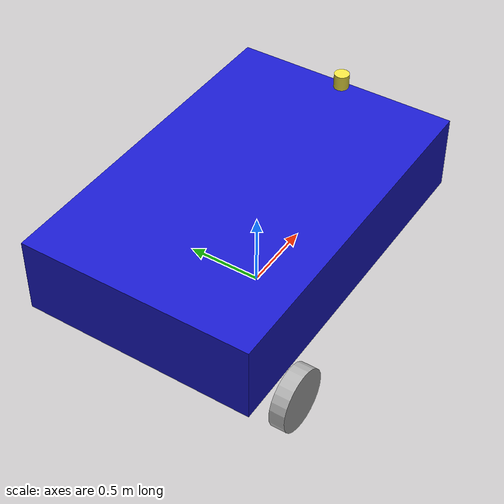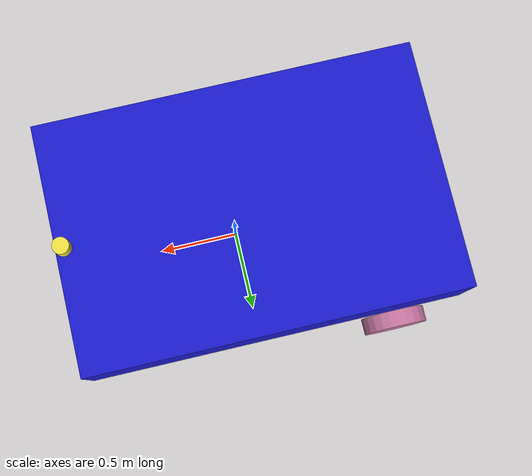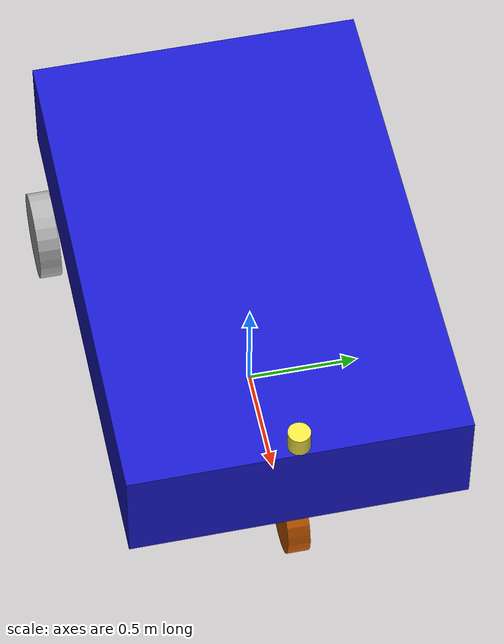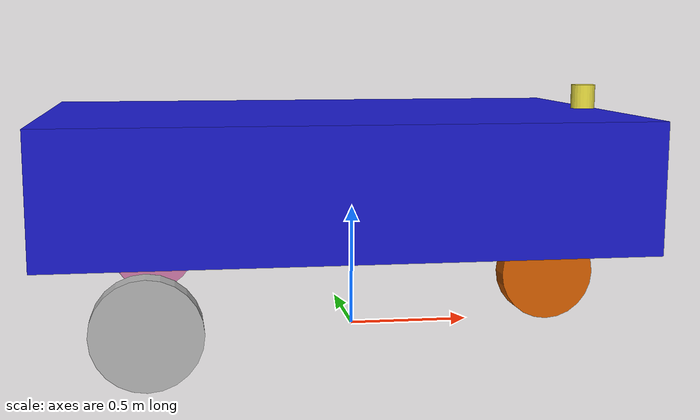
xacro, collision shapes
<?xml version="1.0"?>
<robot name="forklift" xmlns:xacro="http://www.ros.org/wiki/xacro">
  <!-- 定义常量参数 -->
  <xacro:property name="clearance" value="0.008"/> <!-- 增加安全间隙 -->
  <xacro:property name="wheel_radius" value="0.2" />
  <xacro:property name="wheelbase" value="1.7" />
  <xacro:property name="chassis_length" value="2.3" />
  <xacro:property name="chassis_width" value="1.5" />
  <xacro:property name="chassis_height" value="0.5" />
  <xacro:property name="track_width" value="1.6" />

  <!-- 质量参数 -->
  <xacro:property name="chassis_mass" value="100" />
  <xacro:property name="front_wheel_mass" value="30" />
  <xacro:property name="back_wheel_mass" value="5" />

  <!-- 坐标位置计算 -->
  <xacro:property name="wheel_z" value="-${chassis_height/2 + wheel_radius + clearance}" />
  <xacro:property name="front_wheel_x" value="${wheelbase/2}" />
  <xacro:property name="rear_wheel_x" value="${-wheelbase/2}" />
  <xacro:property name="rear_wheel_y" value="${track_width/2}" />
  <xacro:property name="lidar_z" value="${chassis_height / 2 + 0.05}" />
  <!-- 定义一些常用的材料和颜色 -->

  <!-- 指定前轮和后轮为黑色 -->
  <material name="red">
    <color rgba="0.8 0.1 0.1 1"/>
  </material>
  <material name="black">
    <color rgba="0.1 0.1 0.1 1"/>
  </material>
  <material name="blue">
    <color rgba="0.1 0.1 0.8 1"/>
  </material>

  <!-- 地面投影基准坐标系 -->
  <link name="base_footprint" />

  <!-- 底盘 -->
  <link name="base_link">

    <visual>
      <origin xyz="0 0 0.0" rpy="0 0 0"/>
      <geometry>
        <box size="${chassis_length} ${chassis_width} ${chassis_height}"/>
      </geometry>
      <material name="blue"/>
    </visual>

    <collision>
      <origin xyz="-0.1 0 0.0" rpy="0 0 0"/>
      <geometry>
        <box size="${chassis_length} ${chassis_width} ${chassis_height}"/>
      </geometry>
    </collision>

    <inertial>
      <mass value="${chassis_mass}"/>
      <origin xyz="-0.15 0 0.0" rpy="0 0 0"/>
      <inertia ixx="${chassis_mass*(chassis_width**2 + chassis_height**2)/12}"
               ixy="0" ixz="0"
               iyy="${chassis_mass*(chassis_length**2 + chassis_height**2)/12}"
               iyz="0"
               izz="${chassis_mass*(chassis_length**2 + chassis_width**2)/12}"/>
    </inertial>
  </link>

  <link name="imu_link">
    <visual>
      <origin xyz="0 0 0" rpy="0 0 0"/>
      <geometry>
        <box size="0.05 0.05 0.02"/>
      </geometry>
      <material name="red"/>
    </visual>

    <collision>
      <origin xyz="0 0 0" rpy="0 0 0"/>
      <geometry>
        <box size="0.05 0.05 0.02"/>
      </geometry>
    </collision>

    <inertial>
      <mass value="0.1"/>
      <origin xyz="0 0 0" rpy="0 0 0"/>
      <inertia ixx="0.0001" ixy="0" ixz="0"
               iyy="0.0001" iyz="0"
               izz="0.0001"/>
    </inertial>
  </link>
  <joint name="imu_joint" type="fixed">
    <parent link="base_link"/>
    <child link="imu_link"/>
    <origin xyz="0 0 ${chassis_height/2 - 0.05}" rpy="0 0 0"/>
  </joint>

  <!-- base_footprint 到 base_link 的连接 -->
  <joint name="base_footprint_joint" type="fixed">
    <parent link="base_footprint"/>
    <child link="base_link"/>
    <origin xyz="0 0 ${wheel_radius * 2 + chassis_height/2 + clearance}" rpy="0 0 0"/>
  </joint>

  <!-- 激光雷达 -->
  <link name="scanner_link">
    <visual>
            <origin xyz="0 0 0" rpy="0 0 0" />
      <geometry>
                <mesh filename="package://orient_description/kf2404/meshes/R2000.stl" scale="0.001 0.001 0.001" />
        </geometry>
    </visual>

    <collision>
      <geometry>
        <cylinder length="0.1" radius="0.05"/>
      </geometry>
    </collision>
    <inertial>
      <mass value="0.2"/>
      <inertia ixx="0.001" ixy="0" ixz="0" iyy="0.001" iyz="0" izz="0.001"/>
    </inertial>
  </link>

  <joint name="scanner_joint" type="fixed">
    <parent link="base_link"/>
    <child link="scanner_link"/>
    <origin xyz="1.0 0 ${lidar_z}" rpy="0 0 0"/>
  </joint>

  <!-- 前轮转向连接件 -->
  <!-- 前轮转向连接件 -->
  <link name="front_wheel_steering">
    <inertial>
      <origin xyz="0 0 0" rpy="0 0 0"/>
      <mass value="5.0"/>
      <inertia ixx="0.01" ixy="0" ixz="0" iyy="0.01" iyz="0" izz="0.01"/>
    </inertial>
  </link>
  <!-- 前轮转向关节 -->
  <joint name="front_wheel_steer_joint" type="continuous">
    <parent link="base_link"/>
    <child link="front_wheel_steering"/>
    <origin xyz="${front_wheel_x} 0 ${wheel_z}" rpy="0 0 0"/>
    <axis xyz="0 0 1"/>
  </joint>

  <link name="front_wheel">
    <visual>
      <origin rpy="0 0 0"/>
      <geometry>
          <mesh filename="package://turtlebot3_gazebo/models/turtlebot3_common/meshes/wheels/left_tire.stl" scale="0.0065 0.0065 0.0065"/>
        </geometry>
    </visual>

    <collision>
      <origin rpy="${pi/2} 0 0"/>
      <geometry>
        <cylinder radius="${wheel_radius}" length="0.1"/>
      </geometry>
    </collision>

    <inertial>
      <origin rpy="${pi/2} 0 0"/>
      <mass value="${front_wheel_mass}"/>
      <inertia ixx="${front_wheel_mass*(3*wheel_radius**2 + 0.01)/12}"
              ixy="0" ixz="0"
              iyy="${front_wheel_mass*wheel_radius**2/2}"
              iyz="0"
              izz="${front_wheel_mass*(3*wheel_radius**2 + 0.01)/12}"/>

    </inertial>
  </link>

  <joint name="front_wheel_joint" type="continuous">
    <parent link="front_wheel_steering"/>
    <child link="front_wheel"/>
    <origin xyz="0 0 0" rpy="0 0 0"/>
    <axis xyz="0 1 0"/>
  </joint>

  <!-- 左后轮 -->
  <link name="left_rear_wheel">
    <visual>
      <origin rpy="0 0 0"/>
      <geometry>
          <mesh filename="package://turtlebot3_gazebo/models/turtlebot3_common/meshes/wheels/left_tire.stl" scale="0.0065 0.0065 0.0065"/>
        </geometry>
    </visual>

    <collision>
      <origin rpy="${pi/2} 0 0"/>
      <geometry>
        <cylinder radius="${wheel_radius}" length="0.1"/>
      </geometry>
    </collision>

    <inertial>
      <origin rpy="${pi/2} 0 0"/>
      <mass value="${back_wheel_mass}"/>
      <inertia ixx="${back_wheel_mass*(3*wheel_radius**2 + 0.01)/12}"
         ixy="0" ixz="0"
         iyy="${back_wheel_mass*wheel_radius**2/2}"
         iyz="0"
         izz="${back_wheel_mass*(3*wheel_radius**2 + 0.01)/12}"/>
    </inertial>
  </link>

  <joint name="left_rear_wheel_joint" type="continuous">
    <parent link="base_link"/>
    <child link="left_rear_wheel"/>
    <origin xyz="${rear_wheel_x} ${rear_wheel_y} ${wheel_z}" rpy="0 0 0"/>
    <axis xyz="0 1 0"/>
  </joint>

  <!-- 右后轮 -->
  <link name="right_rear_wheel">
    <visual>
      <origin rpy="0 0 0"/>
      <geometry>
          <mesh filename="package://turtlebot3_gazebo/models/turtlebot3_common/meshes/wheels/right_tire.stl" scale="0.0065 0.0065 0.0065"/>
      </geometry>
    </visual>

    <collision>
      <origin rpy="${pi/2} 0 0"/>
      <geometry>
        <cylinder radius="${wheel_radius}" length="0.1"/>
      </geometry>
    </collision>

    <inertial>
      <origin rpy="${pi/2} 0 0"/>
      <mass value="${back_wheel_mass}"/>
      <inertia ixx="${back_wheel_mass*(3*wheel_radius**2 + 0.01)/12}"
              ixy="0" ixz="0"
              iyy="${back_wheel_mass*wheel_radius**2/2}"
              iyz="0"
              izz="${back_wheel_mass*(3*wheel_radius**2 + 0.01)/12}"/>
    </inertial>
  </link>

  <joint name="right_rear_wheel_joint" type="continuous">
    <parent link="base_link"/>
    <child link="right_rear_wheel"/>
    <origin xyz="${rear_wheel_x} ${-rear_wheel_y} ${wheel_z}" rpy="0 0 0"/>
    <axis xyz="0 1 0"/>
  </joint>

</robot>
